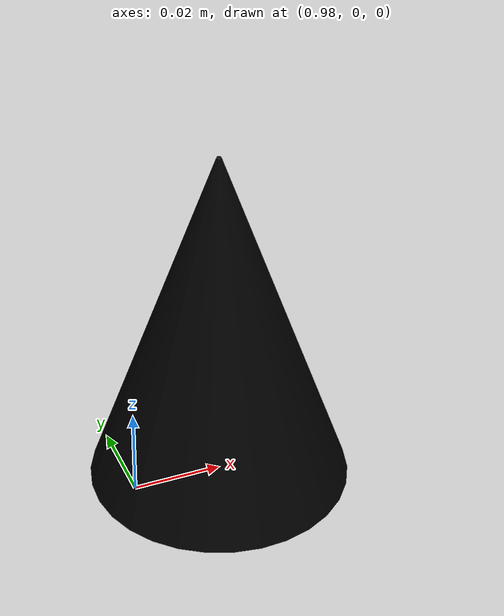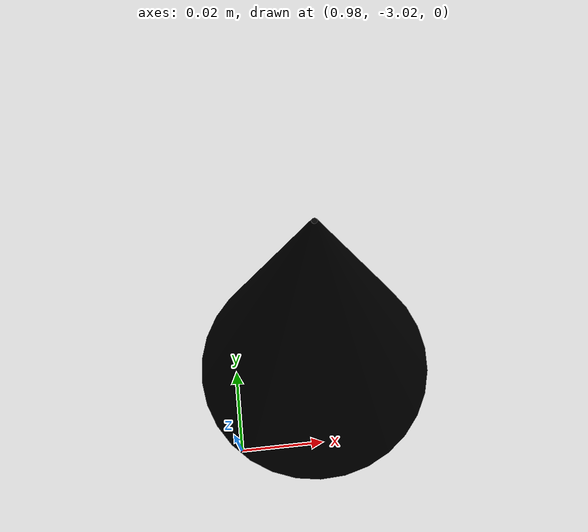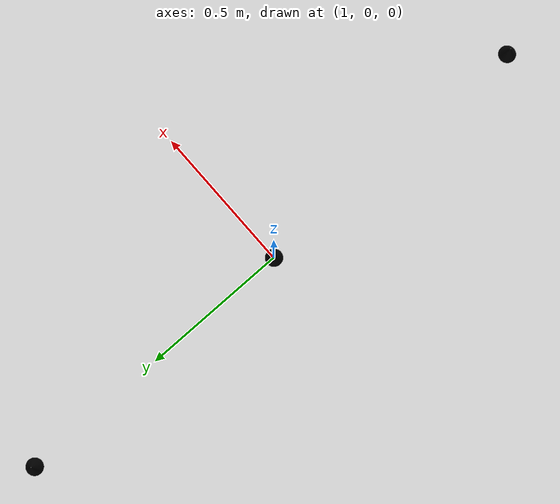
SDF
<sdf version="1.6">
 <world name="default">
  <scene>
   <sky><clouds><speed>12</speed></clouds></sky>
   <ambient>1.0 1.0 1.0 1.0</ambient>
   <shadows>false</shadows>
  </scene>
  <include><uri>model://ground_plane</uri></include>
  <include><uri>model://sun</uri></include>
  <include>
   <name>mini_cone</name>
   <uri>model://urdf/models/mini_cone</uri>
   <pose>1 0 0 0 0 0.785398</pose>
  </include>
  <include>
   <name>mini_cone1</name>
   <uri>model://urdf/models/mini_cone</uri>
   <pose>1 0 0 0 0 0.785398</pose>
  </include>
  <include>
   <name>mini_cone2</name>
   <uri>model://urdf/models/mini_cone</uri>
   <pose>1 0 0 0 0 0.785398</pose>
  </include>
  <include>
   <name>mini_cone3</name>
   <uri>model://urdf/models/mini_cone</uri>
   <pose>1 1 0 0 0 0.785398</pose>
  </include>
  <include>
   <name>mini_cone4</name>
   <uri>model://urdf/models/mini_cone</uri>
   <pose>1 2 0 0 0 0.785398</pose>
  </include>
  <include>
   <name>mini_cone5</name>
   <uri>model://urdf/models/mini_cone</uri>
   <pose>1 3 0 0 0 0.785398</pose>
  </include>
  <include>
   <name>mini_cone6</name>
   <uri>model://urdf/models/mini_cone</uri>
   <pose>1 -1 0 0 0 0.785398</pose>
  </include>
  <include>
   <name>mini_cone7</name>
   <uri>model://urdf/models/mini_cone</uri>
   <pose>1 -2 0 0 0 0.785398</pose>
  </include>
  <include>
   <name>mini_cone8</name>
   <uri>model://urdf/models/mini_cone</uri>
   <pose>1 -3 0 0 0 0.785398</pose>
  </include>
  <include>
   <name>mini_cone9</name>
   <uri>model://urdf/models/mini_cone</uri>
   <pose>1 -4 0 0 0 0.785398</pose>
  </include>
 </world>
</sdf>

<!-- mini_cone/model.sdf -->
<sdf version="1.6">
  <model name="mini_cone">
    <static>true</static>

    <link name="link">
      <collision name="collision">
        <geometry>
          <mesh>
            <uri>model://autocone_description/urdf/mini_cone.dae</uri>
          </mesh>
        </geometry>
        <surface>
            <contact>
              <collide_without_contact>true</collide_without_contact>
            </contact>
          </surface>

      </collision>

      <visual name="visual">
        <cast_shadows>true</cast_shadows>
        <material>
          <ambient>0 0 0 1</ambient>
          <diffuse>0 0 0 1</diffuse>
          <specular>0 0 0.1 1</specular>
          <emissive>1 1 0 0</emissive>
        </material>
        <geometry>
          <mesh>
            <uri>model://autocone_description/urdf/mini_cone.dae</uri>
          </mesh>
        </geometry>
      </visual>
    </link>
  </model>
</sdf>
